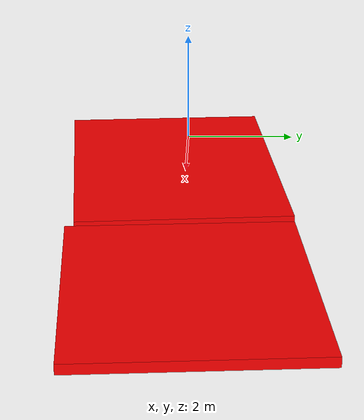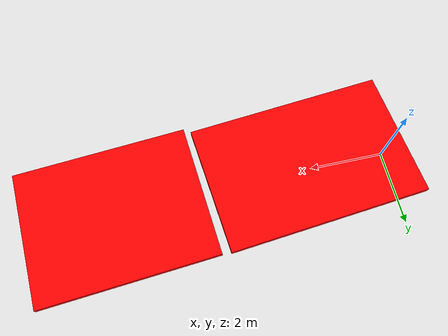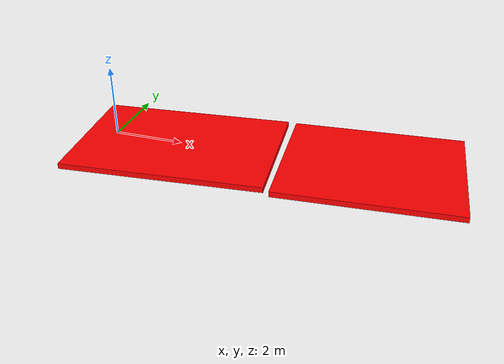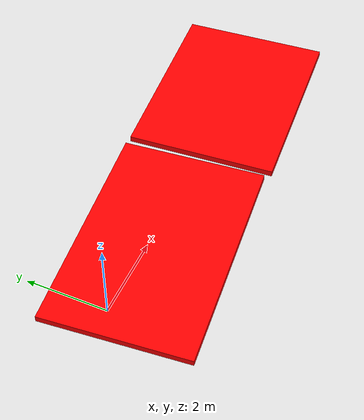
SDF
<sdf version="1.6">
 <world name="default">
  <scene><ambient>0.5 0.5 0.5 1</ambient><background>0.5 0.5 0.5 1</background><shadows>0</shadows></scene>
  <physics name="default_physics" default="0" type="ode">
   <ode>
    <solver>
     <type>quick</type>
     <iters>10</iters>
     <sor>1.3</sor>
     <use_dynamic_moi_rescaling>0</use_dynamic_moi_rescaling>
    </solver>
    <constraints>
     <cfm>0</cfm>
     <erp>0.2</erp>
     <contact_max_correcting_vel>100</contact_max_correcting_vel>
     <contact_surface_layer>0.001</contact_surface_layer>
    </constraints>
   </ode>
   <real_time_update_rate>1000</real_time_update_rate>
   <max_step_size>0.001</max_step_size>
   <real_time_factor>1</real_time_factor>
  </physics>
  <model name="plane1_model">
   <link name="body">
    <collision name="geom_1">
     <geometry><plane><normal>0 0 1</normal><size>1 1</size></plane></geometry>
     <surface>
      <friction><ode><mu>10</mu><mu2>10</mu2><fdir1>0 0 0</fdir1><slip1>0</slip1><slip2>0</slip2></ode></friction>
      <bounce><restitution_coefficient>0</restitution_coefficient><threshold>1e+06</threshold></bounce>
      <contact>
       <ode>
        <soft_cfm>0</soft_cfm>
        <soft_erp>0.2</soft_erp>
        <kp>1e+10</kp>
        <kd>1</kd>
        <max_vel>100</max_vel>
        <min_depth>0.0001</min_depth>
       </ode>
      </contact>
     </surface>
    </collision>
    <visual name="visual_1">
     <geometry><plane><normal>0 0 1</normal><size>1 1</size></plane></geometry>
     <material><script><uri>__default__</uri><name>__default__</name></script></material>
     <cast_shadows>0</cast_shadows>
    </visual>
   </link>
   <static>1</static>
  </model>
  <light name="my_light" type="directional">
   <pose>0 0 30 0 -0 0</pose>
   <diffuse>0.9 0.9 0.9 1</diffuse>
   <specular>0.1 0.1 0.1 1</specular>
   <attenuation><range>20</range></attenuation>
   <direction>0 0 -1</direction>
   <cast_shadows>0</cast_shadows>
  </light>
  <gravity>0 0 -9.8</gravity>
  <magnetic_field>6e-06 2.3e-05 -4.2e-05</magnetic_field>
  <atmosphere type="adiabatic"/>
  <spherical_coordinates>
   <surface_model>EARTH_WGS84</surface_model>
   <latitude_deg>0</latitude_deg>
   <longitude_deg>0</longitude_deg>
   <elevation>0</elevation>
   <heading_deg>0</heading_deg>
  </spherical_coordinates>
  <model name="unit_red_box">
   <link name="link">
    <inertial>
     <mass>3.69605</mass>
     <inertia><ixx>11.9727</ixx><ixy>0</ixy><ixz>0</ixz><iyy>4.49967</iyy><iyz>0</iyz><izz>16.4575</izz></inertia>
    </inertial>
    <visual name="visual">
     <geometry><box><size>5.53217 3.58568 0.155261</size></box></geometry>
     <material>
      <script><name>Gazebo/Grey</name><uri>file://media/materials/scripts/gazebo.material</uri></script>
      <shader type="pixel"><normal_map>__default__</normal_map></shader>
      <ambient>1 0 0 1</ambient>
      <diffuse>1 0 0 1</diffuse>
      <specular>1 0 0 1</specular>
      <emissive>1 0 0 1</emissive>
     </material>
    </visual>
    <collision name="collision">
     <geometry><box><size>5.53217 3.58568 0.155261</size></box></geometry>
     <surface>
      <friction>
       <ode><mu>1</mu><mu2>1</mu2><fdir1>0 0 0</fdir1><slip1>0</slip1><slip2>0</slip2></ode>
       <torsional>
        <coefficient>1</coefficient>
        <patch_radius>0</patch_radius>
        <surface_radius>0</surface_radius>
        <use_patch_radius>1</use_patch_radius>
        <ode><slip>0</slip></ode>
       </torsional>
      </friction>
      <bounce><restitution_coefficient>0</restitution_coefficient><threshold>1e+06</threshold></bounce>
      <contact>
       <collide_without_contact>0</collide_without_contact>
       <collide_without_contact_bitmask>1</collide_without_contact_bitmask>
       <collide_bitmask>1</collide_bitmask>
       <ode>
        <soft_cfm>0</soft_cfm>
        <soft_erp>0.2</soft_erp>
        <kp>1e+13</kp>
        <kd>1</kd>
        <max_vel>0.01</max_vel>
        <min_depth>0</min_depth>
       </ode>
       <bullet>
        <split_impulse>1</split_impulse>
        <split_impulse_penetration_threshold>-0.01</split_impulse_penetration_threshold>
        <soft_cfm>0</soft_cfm>
        <soft_erp>0.2</soft_erp>
        <kp>1e+13</kp>
        <kd>1</kd>
       </bullet>
      </contact>
     </surface>
    </collision>
   </link>
   <static>0</static>
   <pose>2.07334 -0.210135 0.07763 0 -0 0.098826</pose>
  </model>
  <model name="unit_red_box_clone">
   <link name="link">
    <inertial>
     <mass>3.69605</mass>
     <inertia><ixx>11.9727</ixx><ixy>0</ixy><ixz>0</ixz><iyy>4.49967</iyy><iyz>0</iyz><izz>16.4575</izz></inertia>
    </inertial>
    <visual name="visual">
     <geometry><box><size>4.77393 3.69412 0.155261</size></box></geometry>
     <material>
      <script><name>Gazebo/Grey</name><uri>file://media/materials/scripts/gazebo.material</uri></script>
      <shader type="pixel"><normal_map>__default__</normal_map></shader>
      <ambient>1 0 0 1</ambient>
      <diffuse>1 0 0 1</diffuse>
      <specular>1 0 0 1</specular>
      <emissive>1 0 0 1</emissive>
     </material>
    </visual>
    <collision name="collision">
     <geometry><box><size>4.77393 3.69412 0.155261</size></box></geometry>
     <surface>
      <friction>
       <ode><mu>1</mu><mu2>1</mu2><fdir1>0 0 0</fdir1><slip1>0</slip1><slip2>0</slip2></ode>
       <torsional>
        <coefficient>1</coefficient>
        <patch_radius>0</patch_radius>
        <surface_radius>0</surface_radius>
        <use_patch_radius>1</use_patch_radius>
        <ode><slip>0</slip></ode>
       </torsional>
      </friction>
      <bounce><restitution_coefficient>0</restitution_coefficient><threshold>1e+06</threshold></bounce>
      <contact>
       <collide_without_contact>0</collide_without_contact>
       <collide_without_contact_bitmask>1</collide_without_contact_bitmask>
       <collide_bitmask>1</collide_bitmask>
       <ode>
        <soft_cfm>0</soft_cfm>
        <soft_erp>0.2</soft_erp>
        <kp>1e+13</kp>
        <kd>1</kd>
        <max_vel>0.01</max_vel>
        <min_depth>0</min_depth>
       </ode>
       <bullet>
        <split_impulse>1</split_impulse>
        <split_impulse_penetration_threshold>-0.01</split_impulse_penetration_threshold>
        <soft_cfm>0</soft_cfm>
        <soft_erp>0.2</soft_erp>
        <kp>1e+13</kp>
        <kd>1</kd>
       </bullet>
      </contact>
     </surface>
    </collision>
   </link>
   <static>0</static>
   <pose>7.41762 0.187768 0.077625 0 -2e-06 0.081234</pose>
  </model>
 </world>
</sdf>
